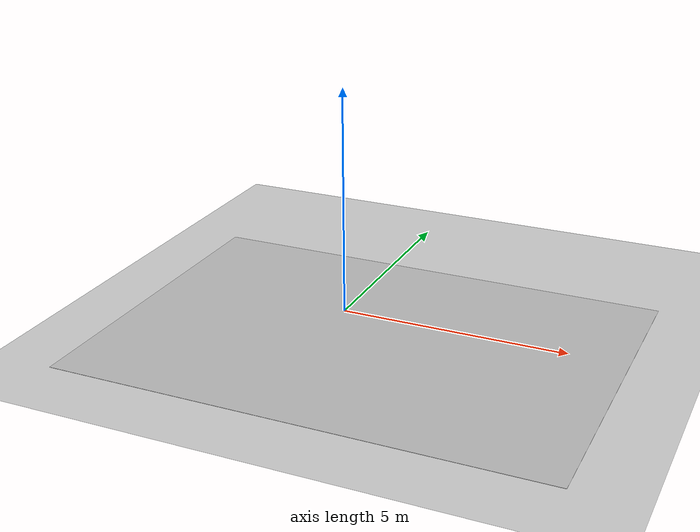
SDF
<sdf version="1.4">
 <world name="default">
  <light name="sun" type="directional">
   <pose>0 0 10 0 -0 0</pose>
   <diffuse>0.8 0.8 0.8 1</diffuse>
   <specular>0.2 0.2 0.2 1</specular>
   <attenuation>
    <range>1000</range>
    <constant>0.9</constant>
    <linear>0.01</linear>
    <quadratic>0.001</quadratic>
   </attenuation>
   <direction>-0.5 0.1 -0.9</direction>
  </light>
  <model name="ground_plane">
   <static>1</static>
   <link name="link">
    <collision name="collision">
     <geometry><plane><normal>0 0 1</normal><size>100 100</size></plane></geometry>
     <surface><friction><ode><mu>100</mu><mu2>50</mu2></ode></friction></surface>
    </collision>
    <visual name="visual">
     <cast_shadows>0</cast_shadows>
     <geometry><plane><normal>0 0 1</normal><size>100 100</size></plane></geometry>
     <material>
      <script><uri>file://media/materials/scripts/gazebo.material</uri><name>Gazebo/Grey</name></script>
     </material>
    </visual>
    <velocity_decay><linear>0</linear><angular>0</angular></velocity_decay>
   </link>
  </model>
  <physics type="ode">
   <max_step_size>0.001</max_step_size>
   <real_time_factor>1</real_time_factor>
   <real_time_update_rate>1000</real_time_update_rate>
   <gravity>0 0 -9.8</gravity>
  </physics>
  <scene><ambient>0.4 0.4 0.4 1</ambient><background>0.7 0.7 0.7 1</background><shadows>1</shadows></scene>
  <spherical_coordinates>
   <surface_model>EARTH_WGS84</surface_model>
   <latitude_deg>0</latitude_deg>
   <longitude_deg>0</longitude_deg>
   <elevation>0</elevation>
   <heading_deg>0</heading_deg>
  </spherical_coordinates>
  <model name="battleracetrack">
   <pose>1 -1 0.01 0 -0 0</pose>
   <static>1</static>
   <link name="link">
    <collision name="collision">
     <geometry><plane><normal>0 0 1</normal><size>10.5325 7.45</size></plane></geometry>
    </collision>
    <visual name="visual">
     <geometry><plane><normal>0 0 1</normal><size>10.5325 7.45</size></plane></geometry>
     <material>
      <script>
       <uri>model://battleracetrack/materials/scripts</uri>
       <uri>model://battleracetrack/materials/textures</uri>
       <name>battleracetrack</name>
      </script>
     </material>
    </visual>
    <velocity_decay><linear>0</linear><angular>0</angular></velocity_decay>
   </link>
  </model>
 </world>
</sdf>
